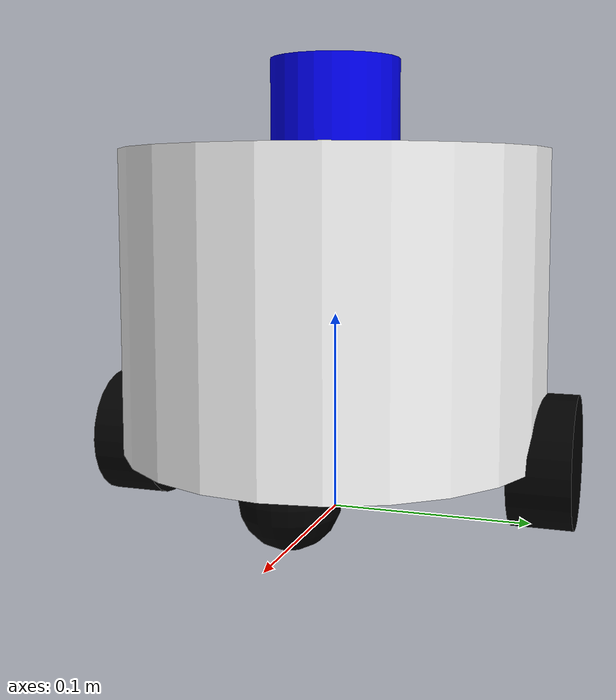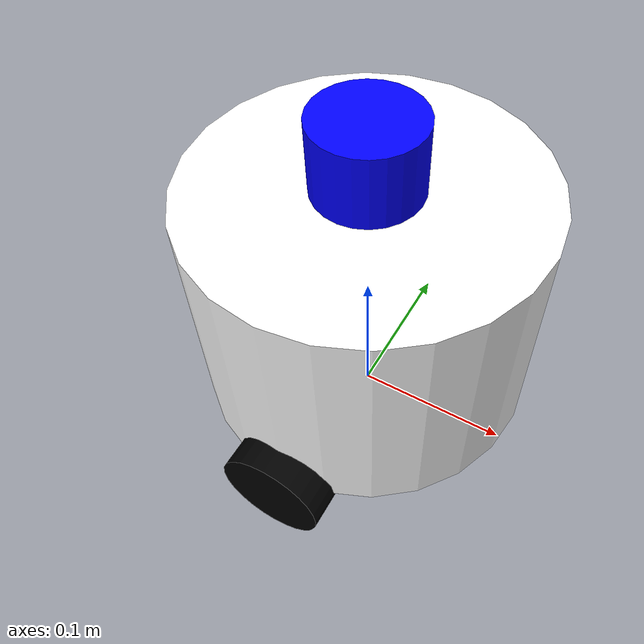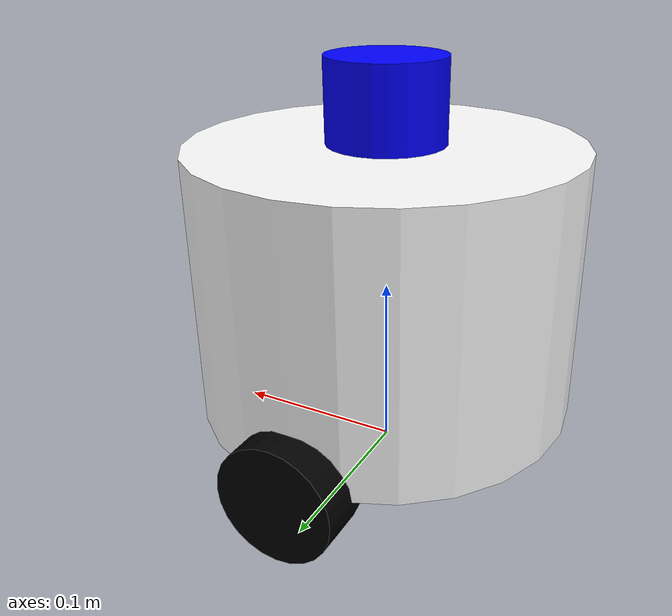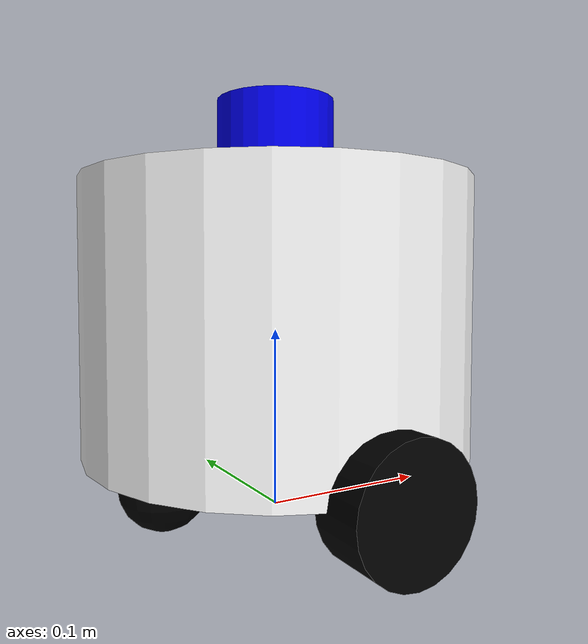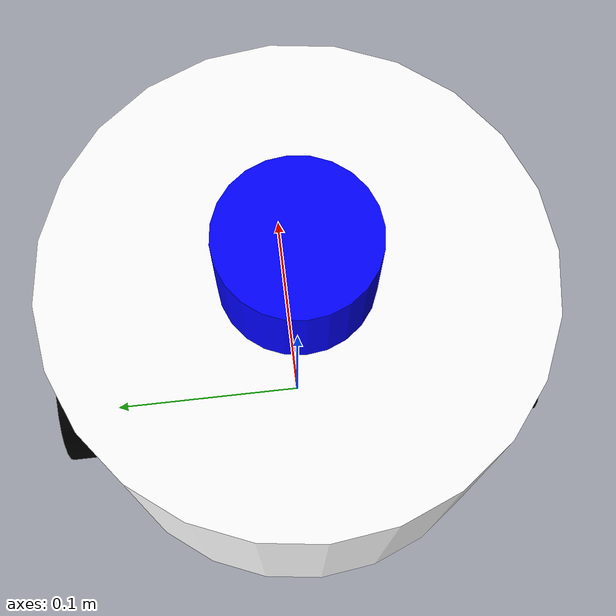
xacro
<?xml version="1.0"?>
<robot xmlns:xacro="http://www.ros.org/wiki/xacro"  name="swarm_bot">

    <xacro:include filename="inertial_macros.xacro" />

    <!-- Base -->
    <link name="base_link">
        <visual>
            <!-- change the position of the visualization only, not the axis -->
            <origin xyz="0 0 0.1075" rpy="0 0 0"/>
            <geometry>
                <!-- unit: meter -->
                <cylinder radius="0.107" length="0.15"/>
            </geometry>
            <material name="white">
                <color rgba="1 1 1 1"/>
            </material>
        </visual>
        <collision>
            <origin xyz="0 0 0.1075" rpy="0 0 0"/>
            <geometry>
                <cylinder radius="0.107" length="0.15"/>
            </geometry>
        </collision>
        <xacro:inertial_cylinder mass="0.5" length="0.15" radius="0.107">
            <origin xyz="0 0 0.1075" rpy="0 0 0"/>
        </xacro:inertial_cylinder>
    </link>

    <!-- Left Wheel -->
    <link name="left_wheel">
        <visual>
            <geometry>
                <cylinder radius="0.0325" length="0.03"/>
            </geometry>
            <material name="black">
                <color rgba="0.0 0.0 0.0 1.0"/>
            </material>
        </visual>
        <collision>
            <geometry>
                <cylinder radius="0.0325" length="0.03"/>
            </geometry>
        </collision>
        <xacro:inertial_cylinder mass="0.2" length="0.03" radius="0.0325">
            <origin xyz="0 0 0" rpy="0 0 0"/>
        </xacro:inertial_cylinder>
    </link>

    <!-- Right Wheel -->
    <link name="right_wheel">
        <visual>
            <geometry>
                <cylinder radius="0.0325" length="0.03"/>
            </geometry>
            <material name="black">
                <color rgba="0.0 0.0 0.0 1.0"/>
            </material>
        </visual>
        <collision>
            <geometry>
                <cylinder radius="0.0325" length="0.03"/>
            </geometry>
        </collision>
        <xacro:inertial_cylinder mass="0.2" length="0.03" radius="0.0325">
            <origin xyz="0 0 0" rpy="0 0 0"/>
        </xacro:inertial_cylinder>
    </link>

    <!-- Front Passive Wheel -->
    <link name="front_passive_wheel">
        <visual>
            <geometry>
                <sphere radius="0.024"/>
            </geometry>
            <material name="black">
                <color rgba="0.0 0.0 0.0 1.0"/>
            </material>
        </visual>
        <collision>
            <geometry>
                <sphere radius="0.024"/>
            </geometry>
        </collision>
        <xacro:inertial_sphere mass="0.1" radius="0.05">
            <origin xyz="0 0 0" rpy="0 0 0"/>
        </xacro:inertial_sphere>
    </link>

    <!-- Back Passive Wheel -->
    <link name="back_passive_wheel">
        <visual>
            <geometry>
                <sphere radius="0.024"/>
            </geometry>
            <material name="black">
                <color rgba="0.0 0.0 0.0 1.0"/>
            </material>
        </visual>
        <collision>
            <geometry>
                <sphere radius="0.024"/>
            </geometry>
        </collision>
        <xacro:inertial_sphere mass="0.1" radius="0.024">
            <origin xyz="0 0 0" rpy="0 0 0"/>
        </xacro:inertial_sphere>
    </link>

    <!-- Lidar -->
    <link name="lidar">
        <visual>
            <geometry>
                <cylinder radius="0.0325" length="0.045"/>
            </geometry>
            <material name="blue">
                <color rgba="0.0 0.0 1.0 1.0"/>
            </material>
        </visual>
        <collision>
            <geometry>
                <cylinder radius="0.0325" length="0.045"/>
            </geometry>
        </collision>
        <xacro:inertial_cylinder mass="0.1" length="0.045" radius="0.0325">
            <origin xyz="0 0 0" rpy="0 0 0"/>
        </xacro:inertial_cylinder>
    </link>

    <!-- Joints -->

    <!-- Left Wheel -->
    <joint name="left_wheel_joint" type="continuous">
        <parent link="base_link"/>
        <child link="left_wheel"/>
        <!-- rotate wheel 90 deg around x-axis -->
        <origin xyz="0 -0.107 0.0325" rpy="-1.5708 0 0"/>
        <axis xyz="0 1 0"/>
    </joint>

    <!-- Right Wheel -->
    <joint name="right_wheel_joint" type="continuous">
        <parent link="base_link"/>
        <child link="right_wheel"/>
        <origin xyz="0 0.107 0.0325" rpy="1.5708 0 0"/>
        <axis xyz="0 1 0"/>
    </joint>

    <!-- Front Passive Wheel -->
    <joint name="front_passive_wheel_joint" type="continuous">
        <parent link="base_link"/>
        <child link="front_passive_wheel"/>
        <origin xyz="0.067 0 0.024" rpy="0 0 0"/>
    </joint>

    <!-- Back Passive Wheel -->
    <joint name="back_passive_wheel_joint" type="continuous">
        <parent link="base_link"/>
        <child link="back_passive_wheel"/>
        <origin xyz="-0.067 0 0.022" rpy="0 0 0"/>
    </joint>

    <!-- Lidar -->
    <joint name="lidar_joint" type="fixed">
        <parent link="base_link"/>
        <child link="lidar"/>
        <origin xyz="0 0 0.205" rpy="0 0 0"/>
    </joint>

</robot>
